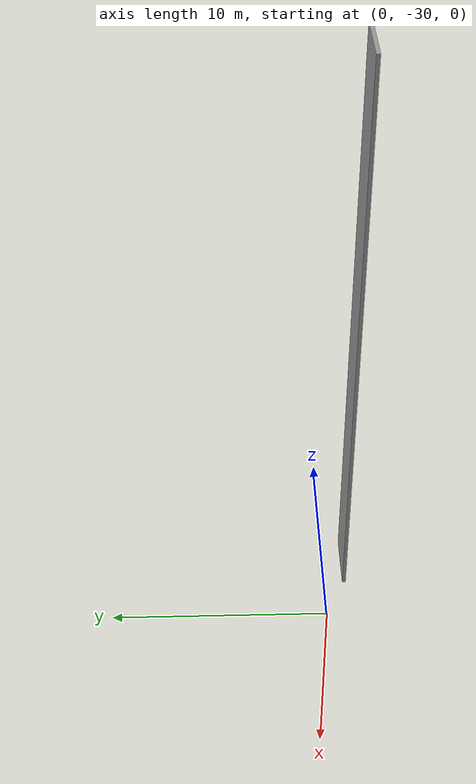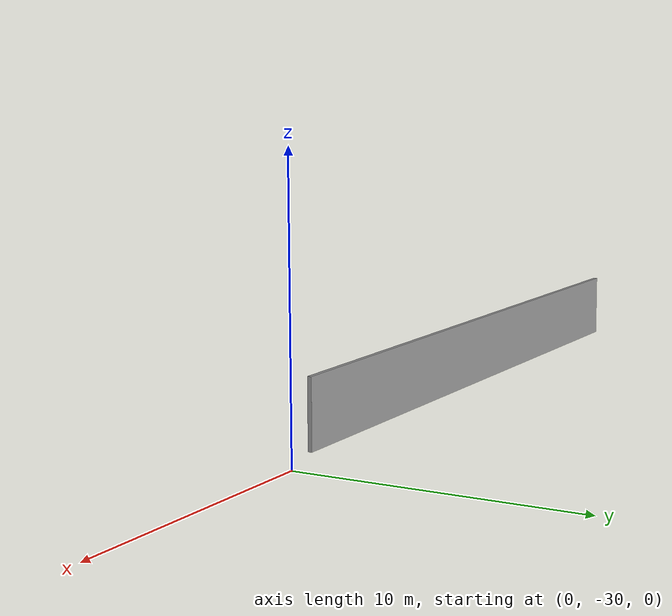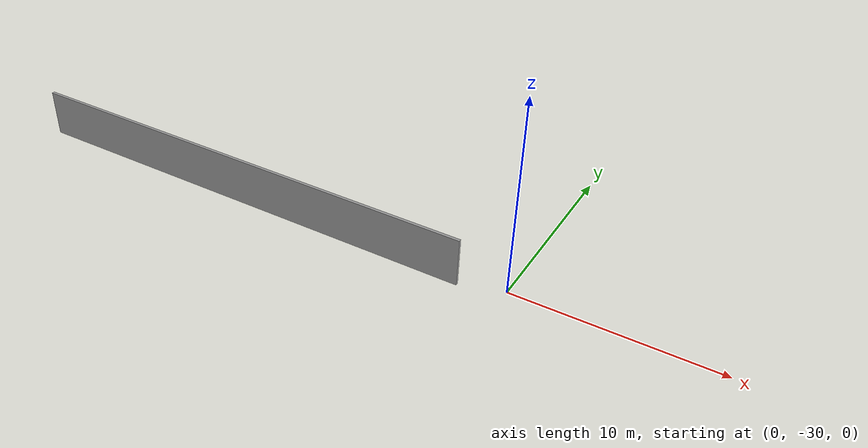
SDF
<?xml version='1.0'?>
<sdf version='1.6'>
  <model name='wall25'>
    <pose frame=''>-14.681 -30.695 0 0 -0 0</pose>
    <link name='Wall_18'>
      <collision name='Wall_18_Collision'>
        <geometry>
          <box>
            <size>25 0.15 2.5</size>
          </box>
        </geometry>
        <pose frame=''>0 0 1.25 0 -0 0</pose>
      </collision>
      <visual name='Wall_18_Visual'>
        <pose frame=''>0 0 1.25 0 -0 0</pose>
        <geometry>
          <box>
            <size>25 0.15 2.5</size>
          </box>
        </geometry>
        <material>
          <script>
            <uri>file://media/materials/scripts/gazebo.material</uri>
            <name>Gazebo/Grey</name>
          </script>
          <ambient>1 1 1 1</ambient>
        </material>
        <meta>
          <layer>0</layer>
        </meta>
      </visual>
      <pose frame=''>0 0 0 0 -0 0</pose>
    </link>
    <static>1</static>
  </model>
</sdf>
